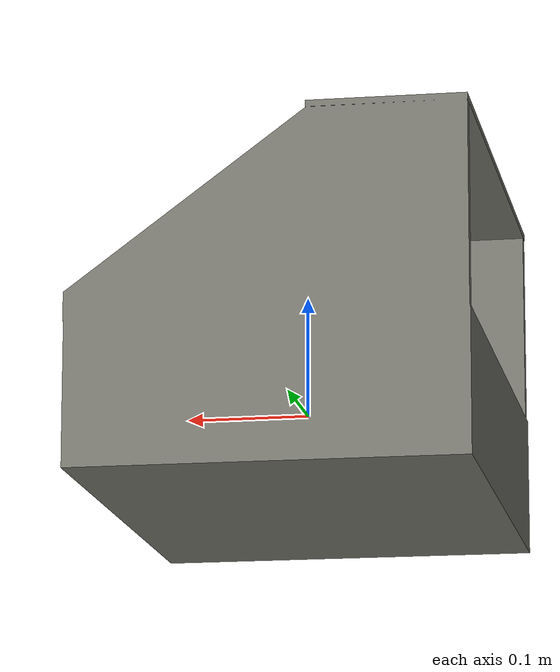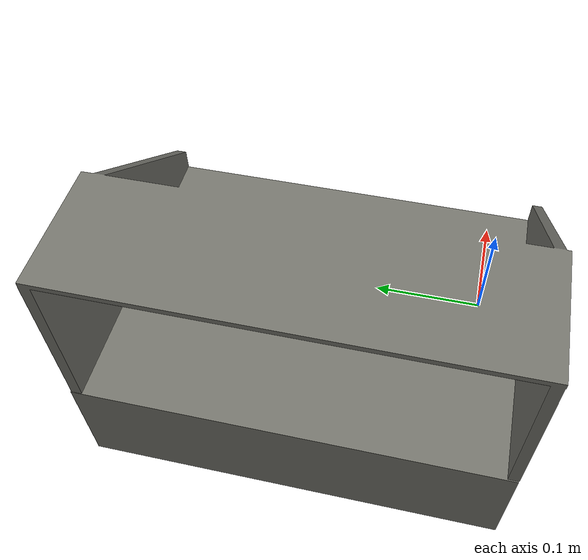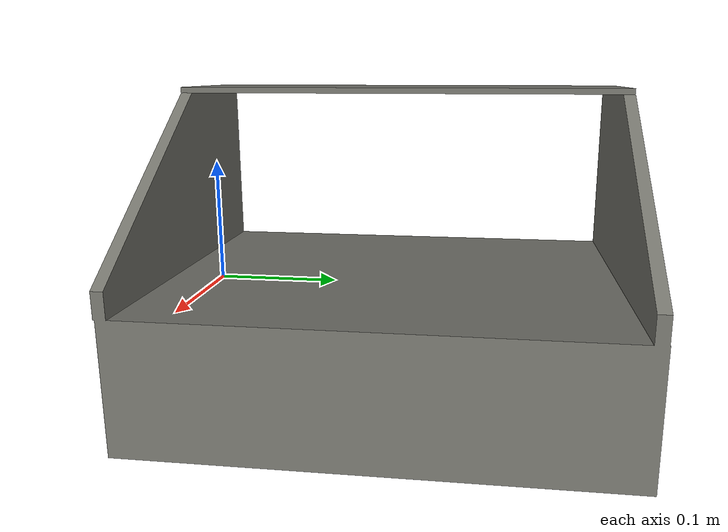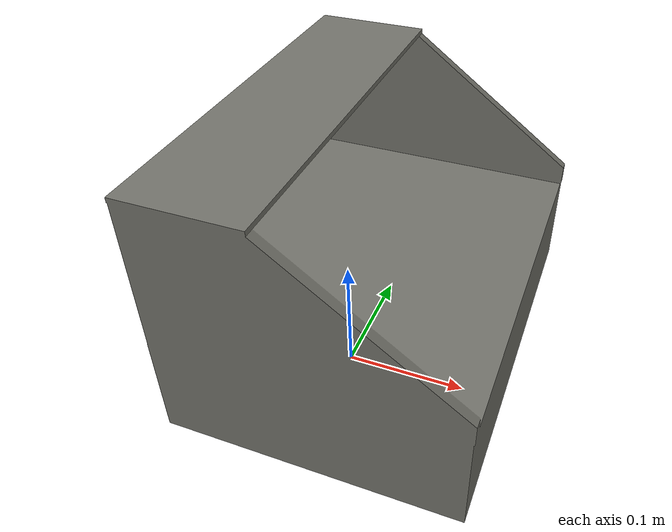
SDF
<?xml version="1.0"?>
<sdf version="1.9">
  <model name="beverage_stand">
    <static>true</static>
    <link name="beverage_stand_link">
      <inertial>
        <mass>4.000000</mass>
        <inertia>
          <ixx>0.004000000</ixx>
          <iyy>0.004000000</iyy>
          <izz>0.004000000</izz>
          <ixy>0</ixy>
          <ixz>0</ixz>
          <iyz>0</iyz>
        </inertia>
      </inertial>
      <visual name="beverage_stand_visual">
        <geometry>
          <mesh>
            <uri>meshes/beverage_stand.obj</uri>
          </mesh>
        </geometry>
        <material>
          <ambient>0.112500 0.112500 0.105000 1.000000</ambient>
          <diffuse>0.450000 0.450000 0.420000 1.000000</diffuse>
          <specular>0.120000 0.120000 0.120000 1.000000</specular>
        </material>
      </visual>
      <collision name="beverage_stand_beverage_stand_base_collision">
        <pose>-0.025909603 0.149219140 -0.054576635 0 0 0</pose>
        <geometry>
          <box>
            <size>0.300000012 0.400000006 0.109999999</size>
          </box>
        </geometry>
        <max_contacts>20</max_contacts>
        <surface>
          <friction>
            <ode>
              <mu>6.0</mu>
              <mu2>6.0</mu2>
              <slip1>0.0</slip1>
              <slip2>0.0</slip2>
            </ode>
            <torsional>
              <coefficient>1.0</coefficient>
              <use_patch_radius>true</use_patch_radius>
              <patch_radius>0.020000</patch_radius>
              <surface_radius>0.010000</surface_radius>
              <ode>
                <slip>0.0</slip>
              </ode>
            </torsional>
          </friction>
          <contact>
            <ode>
              <soft_cfm>0.000000</soft_cfm>
              <soft_erp>0.800000</soft_erp>
              <kp>1000000.000000</kp>
              <kd>100.000000</kd>
              <max_vel>0.010000</max_vel>
              <min_depth>0.002000</min_depth>
            </ode>
          </contact>
        </surface>
      </collision>
      <collision name="beverage_stand_beverage_stand_left_wall_collision">
        <pose>-0.025286436 0.343714893 0.077762485 0 0 0</pose>
        <geometry>
          <box>
            <size>0.300000012 0.009999990 0.155000001</size>
          </box>
        </geometry>
        <max_contacts>20</max_contacts>
        <surface>
          <friction>
            <ode>
              <mu>6.0</mu>
              <mu2>6.0</mu2>
              <slip1>0.0</slip1>
              <slip2>0.0</slip2>
            </ode>
            <torsional>
              <coefficient>1.0</coefficient>
              <use_patch_radius>true</use_patch_radius>
              <patch_radius>0.020000</patch_radius>
              <surface_radius>0.010000</surface_radius>
              <ode>
                <slip>0.0</slip>
              </ode>
            </torsional>
          </friction>
          <contact>
            <ode>
              <soft_cfm>0.000000</soft_cfm>
              <soft_erp>0.800000</soft_erp>
              <kp>1000000.000000</kp>
              <kd>100.000000</kd>
              <max_vel>0.010000</max_vel>
              <min_depth>0.002000</min_depth>
            </ode>
          </contact>
        </surface>
      </collision>
      <collision name="beverage_stand_beverage_stand_right_wall_collision">
        <pose>-0.024855018 -0.046435252 0.077920407 0 0 0</pose>
        <geometry>
          <box>
            <size>0.300000012 0.009999998 0.155000001</size>
          </box>
        </geometry>
        <max_contacts>20</max_contacts>
        <surface>
          <friction>
            <ode>
              <mu>6.0</mu>
              <mu2>6.0</mu2>
              <slip1>0.0</slip1>
              <slip2>0.0</slip2>
            </ode>
            <torsional>
              <coefficient>1.0</coefficient>
              <use_patch_radius>true</use_patch_radius>
              <patch_radius>0.020000</patch_radius>
              <surface_radius>0.010000</surface_radius>
              <ode>
                <slip>0.0</slip>
              </ode>
            </torsional>
          </friction>
          <contact>
            <ode>
              <soft_cfm>0.000000</soft_cfm>
              <soft_erp>0.800000</soft_erp>
              <kp>1000000.000000</kp>
              <kd>100.000000</kd>
              <max_vel>0.010000</max_vel>
              <min_depth>0.002000</min_depth>
            </ode>
          </contact>
        </surface>
      </collision>
      <collision name="beverage_stand_beverage_stand_top_collision">
        <pose>-0.115363777 0.148356289 0.157849401 0 0 0</pose>
        <geometry>
          <box>
            <size>0.120000005 0.400000036 0.004999995</size>
          </box>
        </geometry>
        <max_contacts>20</max_contacts>
        <surface>
          <friction>
            <ode>
              <mu>6.0</mu>
              <mu2>6.0</mu2>
              <slip1>0.0</slip1>
              <slip2>0.0</slip2>
            </ode>
            <torsional>
              <coefficient>1.0</coefficient>
              <use_patch_radius>true</use_patch_radius>
              <patch_radius>0.020000</patch_radius>
              <surface_radius>0.010000</surface_radius>
              <ode>
                <slip>0.0</slip>
              </ode>
            </torsional>
          </friction>
          <contact>
            <ode>
              <soft_cfm>0.000000</soft_cfm>
              <soft_erp>0.800000</soft_erp>
              <kp>1000000.000000</kp>
              <kd>100.000000</kd>
              <max_vel>0.010000</max_vel>
              <min_depth>0.002000</min_depth>
            </ode>
          </contact>
        </surface>
      </collision>
    </link>
  </model>
</sdf>
